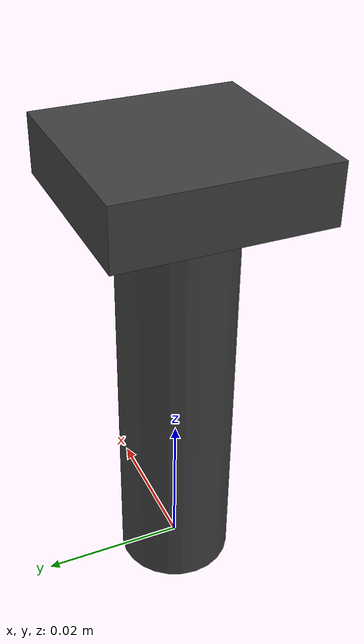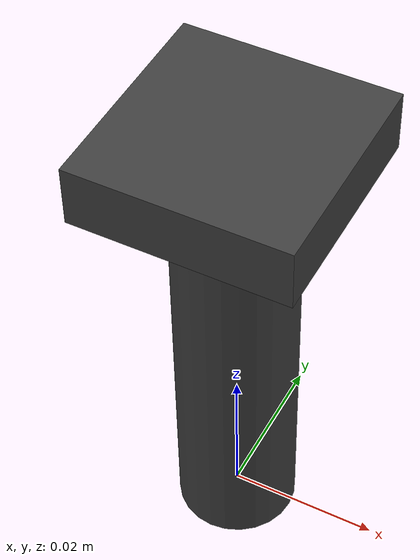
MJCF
<?xml version="1.0" encoding="utf-8"?>
<mujoco model="SpiRob_Pedestal">
  <compiler angle="radian" inertiafromgeom="true" autolimits="true" />
  <default>
    <geom density="1200" friction="0.8 0.05 0.005" rgba="0.25 0.25 0.25 1" contype="1" conaffinity="1" />
  </default>
  <worldbody>
    <body name="pedestal" pos="0 0 0">
      <geom name="ped_shaft" type="cylinder" pos="0 0 0.0285" size="0.008 0.03" contype="1" conaffinity="1" />
      <geom name="ped_cup" type="box" pos="0 0 0.06" size="0.014 0.014 0.004" contype="1" conaffinity="1" />
    </body>
  </worldbody>
</mujoco>
